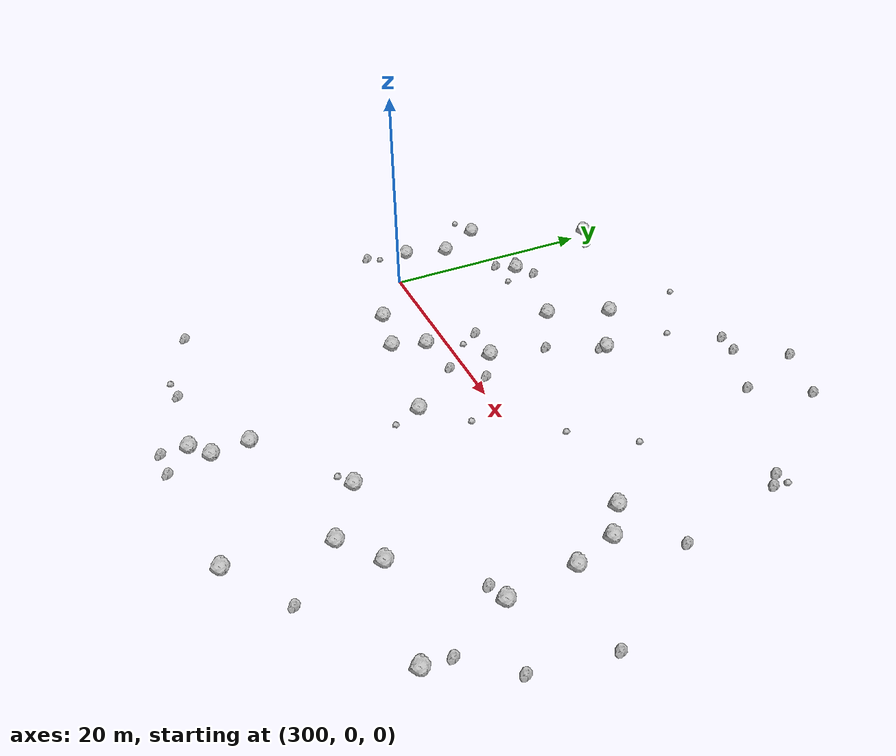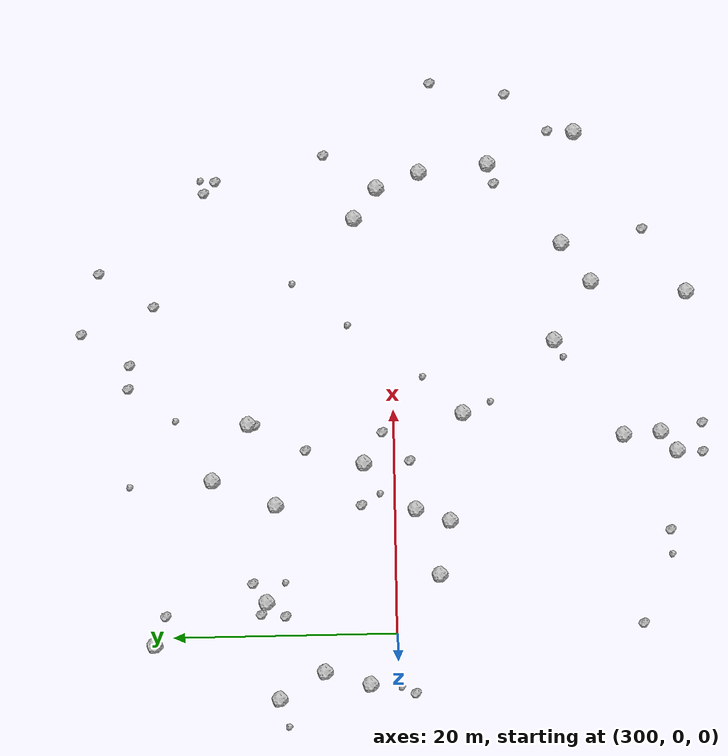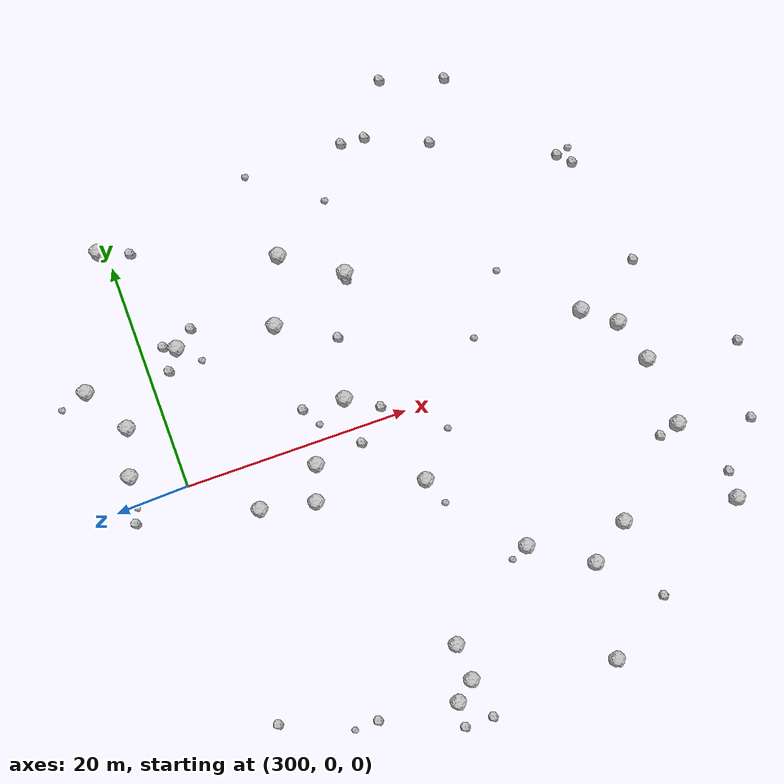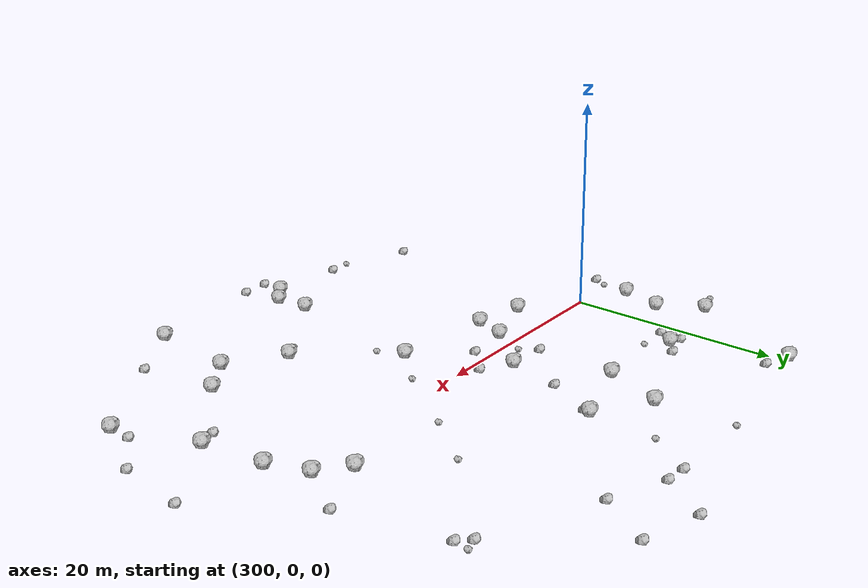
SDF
<sdf version="1.6">
 <world name="default">
  <include><uri>model://sun</uri></include>
  <model name="rock1_8_2">
   <include><uri>model://rock1</uri><pose>334.6360887998172 -15.18194496232846 0.5 0 0 0</pose></include>
  </model>
  <model name="rock1_8_3">
   <include><uri>model://rock1</uri><pose>317.4743139438756 -20.456728299320332 0.5 0 0 0</pose></include>
  </model>
  <model name="rock1_8_4">
   <include><uri>model://rock1</uri><pose>341.79620955592094 -8.744314855879018 0.5 0 0 0</pose></include>
  </model>
  <model name="rock1_8_5">
   <include><uri>model://rock1</uri><pose>317.701550662596 -23.740812209225886 0.5 0 0 0</pose></include>
  </model>
  <model name="rock1_8_6">
   <include><uri>model://rock1</uri><pose>315.36527702388395 2.738503976324729 0.5 0 0 0</pose></include>
  </model>
  <model name="rock1_8_7">
   <include><uri>model://rock1</uri><pose>331.16877045548273 -17.749531596324623 0.5 0 0 0</pose></include>
  </model>
  <model name="rock1_8_8">
   <include><uri>model://rock1</uri><pose>311.1956146777758 -1.8184335463701444 0.5 0 0 0</pose></include>
  </model>
  <model name="rock1_8_9">
   <include><uri>model://rock1</uri><pose>337.14015326728133 3.240548803934537 0.5 0 0 0</pose></include>
  </model>
  <model name="rock1_8_10">
   <include><uri>model://rock1</uri><pose>311.7517627171951 10.66932953682386 0.5 0 0 0</pose></include>
  </model>
  <model name="rock1_8_11">
   <include><uri>model://rock1</uri><pose>305.32706341032736 -3.8655976977454856 0.5 0 0 0</pose></include>
  </model>
  <model name="rock1_8_12">
   <include><uri>model://rock1</uri><pose>299.4927344889779 21.646774631088135 0.5 0 0 0</pose></include>
  </model>
  <model name="rock1_8_13">
   <include><uri>model://rock1</uri><pose>341.1493249437796 -2.6182447393972055 0.5 0 0 0</pose></include>
  </model>
  <model name="rock1_8_14">
   <include><uri>model://rock1</uri><pose>315.98686094078965 -25.196328541152944 0.5 0 0 0</pose></include>
  </model>
  <model name="rock1_8_15">
   <include><uri>model://rock1</uri><pose>310.1192754787564 -4.864713944604901 0.5 0 0 0</pose></include>
  </model>
  <model name="rock1_8_16">
   <include><uri>model://rock1</uri><pose>344.5033145405384 -16.474675469712906 0.5 0 0 0</pose></include>
  </model>
  <model name="rock1_8_17">
   <include><uri>model://rock1</uri><pose>295.66952778171924 2.481464427260242 0.5 0 0 0</pose></include>
  </model>
  <model name="rock1_8_18">
   <include><uri>model://rock1</uri><pose>303.12983392872167 11.619207293262406 0.5 0 0 0</pose></include>
  </model>
  <model name="rock1_8_19">
   <include><uri>model://rock1</uri><pose>326.00374010149466 -14.412209535539183 0.5 0 0 0</pose></include>
  </model>
  <model name="rock1_8_20">
   <include><uri>model://rock1</uri><pose>296.8503434509028 6.512828497003014 0.5 0 0 0</pose></include>
  </model>
  <model name="rock1_8_21">
   <include><uri>model://rock1</uri><pose>330.12080796427716 -26.21302151229458 0.5 0 0 0</pose></include>
  </model>
  <model name="rock1_8_22">
   <include><uri>model://rock1</uri><pose>318.98997852844246 12.980140768813477 0.5 0 0 0</pose></include>
  </model>
  <model name="rock1_8_23">
   <include><uri>model://rock1</uri><pose>314.02930500639997 16.276158348242213 0.5 0 0 0</pose></include>
  </model>
  <model name="rock1_8_24">
   <include><uri>model://rock1</uri><pose>319.67607876754244 -6.160044569814179 0.5 0 0 0</pose></include>
  </model>
  <model name="rock1_8_25">
   <include><uri>model://rock1</uri><pose>294.4944900479235 10.592067391792504 0.5 0 0 0</pose></include>
  </model>
  <model name="rock1_8_26">
   <include><uri>model://rock1</uri><pose>339.83057245085183 1.1986093790775527 0.5 0 0 0</pose></include>
  </model>
  <model name="rock2_8_0">
   <include><uri>model://rock2</uri><pose>322.31514466337677 23.63673148207289 0.3 0 0 0</pose></include>
  </model>
  <model name="rock2_8_1">
   <include><uri>model://rock2</uri><pose>340.6409764479818 15.54753557854196 0.3 0 0 0</pose></include>
  </model>
  <model name="rock2_8_2">
   <include><uri>model://rock2</uri><pose>308.91405557275436 -24.511979365625983 0.3 0 0 0</pose></include>
  </model>
  <model name="rock2_8_3">
   <include><uri>model://rock2</uri><pose>318.07035114229853 1.059945467820313 0.3 0 0 0</pose></include>
  </model>
  <model name="rock2_8_4">
   <include><uri>model://rock2</uri><pose>315.8281938571431 -27.49665460089184 0.3 0 0 0</pose></include>
  </model>
  <model name="rock2_8_5">
   <include><uri>model://rock2</uri><pose>315.49328017645405 -1.3542298288657975 0.3 0 0 0</pose></include>
  </model>
  <model name="rock2_8_6">
   <include><uri>model://rock2</uri><pose>318.8660211781528 12.41511212715102 0.3 0 0 0</pose></include>
  </model>
  <model name="rock2_8_7">
   <include><uri>model://rock2</uri><pose>327.2493690530656 27.721186308532403 0.3 0 0 0</pose></include>
  </model>
  <model name="rock2_8_8">
   <include><uri>model://rock2</uri><pose>344.6238786253833 -14.120860596886251 0.3 0 0 0</pose></include>
  </model>
  <model name="rock2_8_9">
   <include><uri>model://rock2</uri><pose>318.40463351701595 -27.472036339658693 0.3 0 0 0</pose></include>
  </model>
  <model name="rock2_8_10">
   <include><uri>model://rock2</uri><pose>332.612826460889 26.048455678484068 0.3 0 0 0</pose></include>
  </model>
  <model name="rock2_8_11">
   <include><uri>model://rock2</uri><pose>301.8155480962288 9.968962141529005 0.3 0 0 0</pose></include>
  </model>
  <model name="rock2_8_12">
   <include><uri>model://rock2</uri><pose>300.63546236224533 -21.966501027866048 0.3 0 0 0</pose></include>
  </model>
  <model name="rock2_8_13">
   <include><uri>model://rock2</uri><pose>349.06893360767356 -3.721012801129831 0.3 0 0 0</pose></include>
  </model>
  <model name="rock2_8_14">
   <include><uri>model://rock2</uri><pose>294.75273088414656 -1.5268802271432875 0.3 0 0 0</pose></include>
  </model>
  <model name="rock2_8_15">
   <include><uri>model://rock2</uri><pose>335.77022768970545 -22.416861228383997 0.3 0 0 0</pose></include>
  </model>
  <model name="rock2_8_16">
   <include><uri>model://rock2</uri><pose>304.77792298573036 12.839588273857792 0.3 0 0 0</pose></include>
  </model>
  <model name="rock2_8_17">
   <include><uri>model://rock2</uri><pose>316.5575765721989 7.929087784140748 0.3 0 0 0</pose></include>
  </model>
  <model name="rock2_8_18">
   <include><uri>model://rock2</uri><pose>324.40570572267126 23.47394220133937 0.3 0 0 0</pose></include>
  </model>
  <model name="rock2_8_19">
   <include><uri>model://rock2</uri><pose>329.58575562893304 21.233157372831847 0.3 0 0 0</pose></include>
  </model>
  <model name="rock2_8_20">
   <include><uri>model://rock2</uri><pose>339.6111636844997 16.57816840124977 0.3 0 0 0</pose></include>
  </model>
  <model name="rock2_8_21">
   <include><uri>model://rock2</uri><pose>340.04697772375226 -9.28297667338192 0.3 0 0 0</pose></include>
  </model>
  <model name="rock2_8_22">
   <include><uri>model://rock2</uri><pose>311.6145550167376 3.0263839979703917 0.3 0 0 0</pose></include>
  </model>
  <model name="rock2_8_23">
   <include><uri>model://rock2</uri><pose>342.82127051921066 5.876066820659112 0.3 0 0 0</pose></include>
  </model>
  <model name="rock2_8_24">
   <include><uri>model://rock2</uri><pose>301.98489518482495 20.66161543903859 0.3 0 0 0</pose></include>
  </model>
  <model name="rock2_8_25">
   <include><uri>model://rock2</uri><pose>347.9653787944232 -10.372433501055134 0.3 0 0 0</pose></include>
  </model>
  <model name="rock2_8_26">
   <include><uri>model://rock2</uri><pose>302.01032618897074 12.122686812663027 0.3 0 0 0</pose></include>
  </model>
  <model name="rock3_8_0">
   <include><uri>model://rock3</uri><pose>306.703350245116 -24.667347378599434 0.2 0 0 0</pose></include>
  </model>
  <model name="rock3_8_1">
   <include><uri>model://rock3</uri><pose>304.7870788949116 9.908630993705536 0.2 0 0 0</pose></include>
  </model>
  <model name="rock3_8_2">
   <include><uri>model://rock3</uri><pose>340.7178066777175 16.84198987916657 0.2 0 0 0</pose></include>
  </model>
  <model name="rock3_8_3">
   <include><uri>model://rock3</uri><pose>320.5835444805128 -8.661985514764027 0.2 0 0 0</pose></include>
  </model>
  <model name="rock3_8_4">
   <include><uri>model://rock3</uri><pose>291.9117875576067 9.799738616224872 0.2 0 0 0</pose></include>
  </model>
  <model name="rock3_8_5">
   <include><uri>model://rock3</uri><pose>327.62766251649 3.964115407875809 0.2 0 0 0</pose></include>
  </model>
  <model name="rock3_8_6">
   <include><uri>model://rock3</uri><pose>313.5196077382274 23.63900214769791 0.2 0 0 0</pose></include>
  </model>
  <model name="rock3_8_7">
   <include><uri>model://rock3</uri><pose>324.4465345928549 -15.235769552581374 0.2 0 0 0</pose></include>
  </model>
  <model name="rock3_8_8">
   <include><uri>model://rock3</uri><pose>331.3955657362763 8.834040494327382 0.2 0 0 0</pose></include>
  </model>
  <model name="rock3_8_9">
   <include><uri>model://rock3</uri><pose>312.5634635037511 1.316577257432641 0.2 0 0 0</pose></include>
  </model>
  <model name="rock3_8_10">
   <include><uri>model://rock3</uri><pose>322.913953280785 -2.648684046159204 0.2 0 0 0</pose></include>
  </model>
  <model name="rock3_8_11">
   <include><uri>model://rock3</uri><pose>295.2717195194049 -0.3100887336990823 0.2 0 0 0</pose></include>
  </model>
  <model name="rock3_8_12">
   <include><uri>model://rock3</uri><pose>319.34541797490243 19.452858409133185 0.2 0 0 0</pose></include>
  </model>
 </world>
</sdf>
